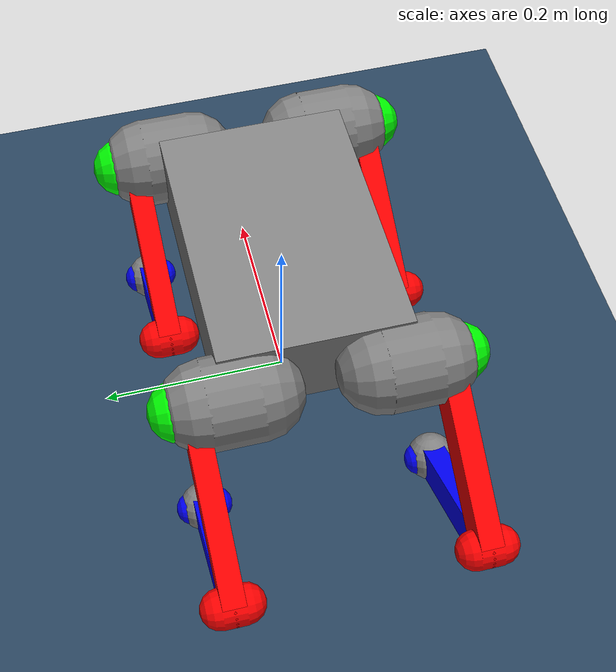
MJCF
<mujoco model="quadruped">
    <compiler angle="radian" autolimits="true" inertiafromgeom="true"/>

    <option gravity="0 0 -9.81" timestep="0.001"/>

    <size nstack="3000"/>

    <statistic center="0 0 0.1" extent="0.8"/>

    <visual>
        <headlight diffuse="0.6 0.6 0.6" ambient="0.3 0.3 0.3" specular="0 0 0"/>
        <rgba haze="0.15 0.25 0.35 1"/>
        <global azimuth="120" elevation="-20"/>
    </visual>

    <asset>
        <texture type="skybox" builtin="gradient" rgb1="0.3 0.5 0.7" rgb2="0 0 0" width="512" height="3072"/>
        <texture type="2d" name="groundplane" builtin="checker" mark="edge" rgb1="0.2 0.3 0.4" rgb2="0.1 0.2 0.3"
        markrgb="0.8 0.8 0.8" width="300" height="300"/>
        <material name="groundplane" texture="groundplane" texuniform="true" texrepeat="5 5" reflectance="0.2"/>
    </asset>

    <custom>
        <numeric data="10000" name="constraint_stiffness"/>
        <numeric data="10000" name="constraint_limit_stiffness"/>
        <numeric data="10" name="constraint_ang_damping"/>
        <numeric data="50" name="constraint_vel_damping"/>
        <numeric data="0" name="ang_damping"/>
        <numeric data="0" name="spring_mass_scale"/>
        <numeric data="1" name="spring_inertia_scale"/>
        <numeric data="20" name="matrix_inv_iterations"/>
        <numeric data="20" name="solver_maxls"/>
    </custom>

    <default>
        <default class="collision">
            <geom contype="1" conaffinity="1" group="1"/>
        </default>
        <default class="visual">
            <geom contype="0" conaffinity="0" group="2"/>
        </default>
        <default class="motors">
            <general gaintype="fixed" biastype="affine" gainprm="5" biasprm="0 0 0" gear="1 0 0 0 0 0"/>
        </default>
    </default>

    <worldbody>
        <light name="spotlight" mode="targetbodycom" target="base" pos="0 -1 2"/>
        <light pos="0 0 1.5" dir="0 0 -1" directional="true"/>
        <geom name="floor" size="0 0 0.05" type="plane" material="groundplane"/>
        <body name="base" pos="0 0 0.2">
            <freejoint/>
            <geom type="box" size="0.1375 0.095 0.045" pos="0 0 0" quat="1 0 0 0"/>
            <!-- HIP: r=0.45 l=0.5 extended in the y-direction by an extra: 0.015 -->
            <geom class="visual" type="capsule" size="0.045 0.025" pos="0.1525 0.085 0" quat="1 1 0 0"/>
            <geom class="visual" type="capsule" size="0.045 0.025" pos="0.1525 -0.085 0" quat="1 1 0 0"/>
            <geom class="visual" type="capsule" size="0.045 0.025" pos="-0.1525 -0.085 0" quat="1 1 0 0"/>
            <geom class="visual" type="capsule" size="0.045 0.025" pos="-0.1525 0.085 0" quat="1 1 0 0"/>
            <body name="front_left_leg" pos="0.1525 0.1225 0" quat="0.258819 0 0.9659258 0">
                <joint type="hinge" axis="0 1 0" pos="0 0 0" range="-1.57 1.57" limited="true" damping="1" name="front_left_hip_joint"/>
                <geom class="visual" type="capsule" size="0.03 0.0125" pos="0 0 0" quat="1 1 0 0" rgba="0 1 0 1"/>
                <body name="front_left_thigh" pos="0 0 0">
                    <geom class="visual" type="box" size="0.0925 0.02 0.0115" pos="0.0925 0 0" quat="1 1 0 0" rgba="1 0 0 1"/>
                    <geom class="visual" type="capsule" size="0.02 0.0115" pos="0.185 0 0" quat="1 1 0 0" rgba="1 0 0 1"/>
                    <body name="front_left_knee" pos="0.185 0 0" quat="0.5 0 -0.8660254 0">
                        <joint type="hinge" axis="0 1 0" pos="0 0 0" range="-0.57 1.91" limited="true" damping="1" name="front_left_knee_joint"/>
                        <geom class="collision" type="sphere" size="0.02" pos="0 0 0" rgba="1 0 0 0.5"/>
                        <body name="front_left_calf" pos="0 0 0">
                            <geom class="visual" type="box" size="0.085 0.0175 0.0115" pos="0.085 0 0" quat="1 1 0 0" rgba="0 0 1 1"/>
                            <geom class="visual" type="capsule" size="0.0175 0.0115" pos="0.17 0 0" quat="1 1 0 0" rgba="0 0 1 1"/>
                            <body name="front_left_foot" pos="0.17 0 0">
                                <geom class="collision" type="sphere" size="0.025" pos="0 0 0" friction="1.2 0.005 0.0001"/>
                            </body>
                        </body>
                    </body>
                </body>
            </body>
            <body name="front_right_leg" pos="0.1525 -0.1225 0" quat="0.258819 0 0.9659258 0">
                <joint type="hinge" axis="0 1 0" pos="0 0 0" range="-1.57 1.57" limited="true" damping="1" name="front_right_hip_joint"/>
                <geom class="visual" type="capsule" size="0.03 0.0125" pos="0 0 0" quat="1 1 0 0" rgba="0 1 0 1"/>
                <body name="front_right_thigh" pos="0 0 0">
                    <geom class="visual" type="box" size="0.0925 0.02 0.0115" pos="0.0925 0 0" quat="1 1 0 0" rgba="1 0 0 1"/>
                    <geom class="visual" type="capsule" size="0.02 0.0115" pos="0.185 0 0" quat="1 1 0 0" rgba="1 0 0 1"/>
                    <body name="front_right_knee" pos="0.185 0 0" quat="0.5 0 -0.8660254 0">
                        <joint type="hinge" axis="0 1 0" pos="0 0 0"  range="-0.57 1.91" limited="true" damping="1" name="front_right_knee_joint"/>
                        <geom class="collision" type="sphere" size="0.02" pos="0 0 0" rgba="1 0 0 0.5"/>
                        <body name="front_right_calf" pos="0 0 0">
                            <geom class="visual" type="box" size="0.085 0.0175 0.0115" pos="0.085 0 0" quat="1 1 0 0" rgba="0 0 1 1"/>
                            <geom class="visual" type="capsule" size="0.0175 0.0115" pos="0.17 0 0" quat="1 1 0 0" rgba="0 0 1 1"/>
                            <body name="front_right_foot" pos="0.17 0 0">
                                <geom class="collision" type="sphere" size="0.025" pos="0 0 0" friction="1.2 0.005 0.0001"/>
                            </body>
                        </body>
                    </body>
                </body>
            </body>
            <body name="back_left_leg" pos="-0.1525 0.1225 0" quat="0.258819 0 0.9659258 0">
                <joint type="hinge" axis="0 1 0" pos="0 0 0" range="-1.57 1.57" limited="true" damping="1" name="back_left_hip_joint"/>
                <geom class="visual" type="capsule" size="0.03 0.0125" pos="0 0 0" quat="1 1 0 0" rgba="0 1 0 1"/>
                <body name="back_left_thigh" pos="0 0 0">
                    <geom class="visual" type="box" size="0.0925 0.02 0.0115" pos="0.0925 0 0" quat="1 1 0 0" rgba="1 0 0 1"/>
                    <geom class="visual" type="capsule" size="0.02 0.0115" pos="0.185 0 0" quat="1 1 0 0" rgba="1 0 0 1"/>
                    <body name="back_left_knee" pos="0.185 0 0" quat="0.5 0 -0.8660254 0">
                        <joint type="hinge" axis="0 1 0" pos="0 0 0" range="-0.57 1.91" limited="true" damping="1" name="back_left_knee_joint"/>
                        <geom class="collision" type="sphere" size="0.02" pos="0 0 0" rgba="1 0 0 0.5"/>
                        <body name="back_left_calf" pos="0 0 0">
                            <geom class="visual" type="box" size="0.085 0.0175 0.0115" pos="0.085 0 0" quat="1 1 0 0" rgba="0 0 1 1"/>
                            <geom class="visual" type="capsule" size="0.0175 0.0115" pos="0.17 0 0" quat="1 1 0 0" rgba="0 0 1 1"/>
                            <body name="back_left_foot" pos="0.17 0 0">
                                <geom class="collision" type="sphere" size="0.025" pos="0 0 0" friction="1.2 0.005 0.0001"/>
                            </body>
                        </body>
                    </body>
                </body>
            </body>
            <body name="back_right_leg" pos="-0.1525 -0.1225 0" quat="0.258819 0 0.9659258 0">
                <joint type="hinge" axis="0 1 0" pos="0 0 0" range="-1.57 1.57" limited="true" damping="1" name="back_right_hip_joint"/>
                <geom class="visual" type="capsule" size="0.03 0.0125" pos="0 0 0" quat="1 1 0 0" rgba="0 1 0 1"/>
                <body name="back_right_thigh" pos="0 0 0">
                    <geom class="visual" type="box" size="0.0925 0.02 0.0115" pos="0.0925 0 0" quat="1 1 0 0" rgba="1 0 0 1"/>
                    <geom class="visual" type="capsule" size="0.02 0.0115" pos="0.185 0 0" quat="1 1 0 0" rgba="1 0 0 1"/>
                    <body name="back_right_knee" pos="0.185 0 0" quat="0.5 0 -0.8660254 0">
                        <joint type="hinge" axis="0 1 0" pos="0 0 0" range="-0.57 1.91" limited="true" damping="1" name="back_right_knee_joint"/>
                        <geom class="collision" type="sphere" size="0.02" pos="0 0 0" rgba="1 0 0 0.5"/>
                        <body name="back_right_calf" pos="0 0 0">
                            <geom class="visual" type="box" size="0.085 0.0175 0.0115" pos="0.085 0 0" quat="1 1 0 0" rgba="0 0 1 1"/>
                            <geom class="visual" type="capsule" size="0.0175 0.0115" pos="0.17 0 0" quat="1 1 0 0" rgba="0 0 1 1"/>
                            <body name="back_right_foot" pos="0.17 0 0">
                                <geom class="collision" type="sphere" size="0.025" pos="0 0 0" friction="1.2 0.005 0.0001"/>
                            </body>
                        </body>
                    </body>
                </body>
            </body>
        </body>
    </worldbody>

    <actuator>
        <general class="motors" name="front_left_hip_motor" joint="front_left_hip_joint"/>
        <general class="motors" name="front_left_knee_motor" joint="front_left_knee_joint"/>
        <general class="motors" name="front_right_hip_motor" joint="front_right_hip_joint"/>
        <general class="motors" name="front_right_knee_motor" joint="front_right_knee_joint"/>
        <general class="motors" name="back_left_hip_motor" joint="back_left_hip_joint"/>
        <general class="motors" name="back_left_knee_motor" joint="back_left_knee_joint"/>
        <general class="motors" name="back_right_hip_motor" joint="back_right_hip_joint"/>
        <general class="motors" name="back_right_knee_motor" joint="back_right_knee_joint"/>
    </actuator>

</mujoco>
